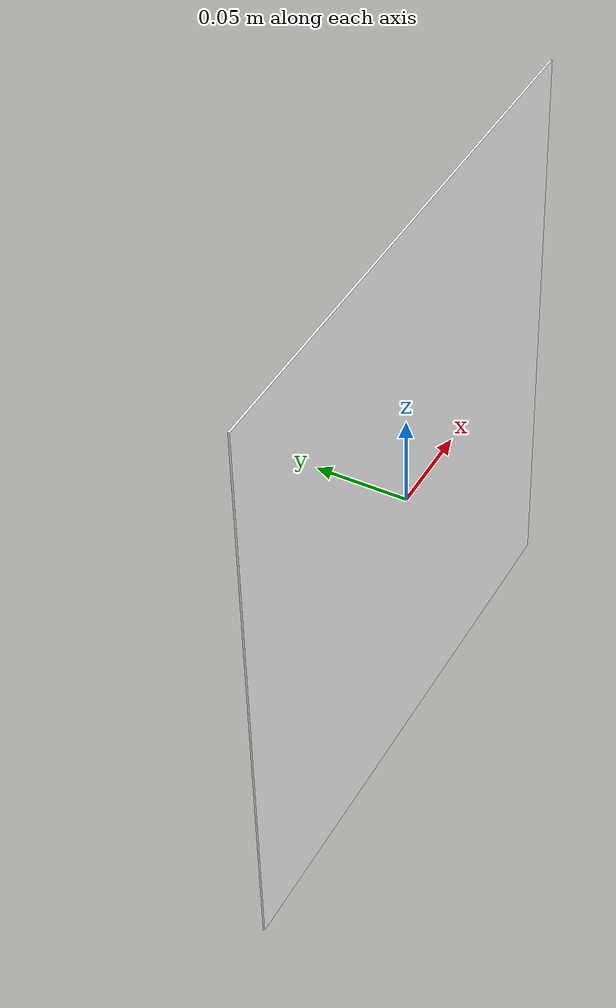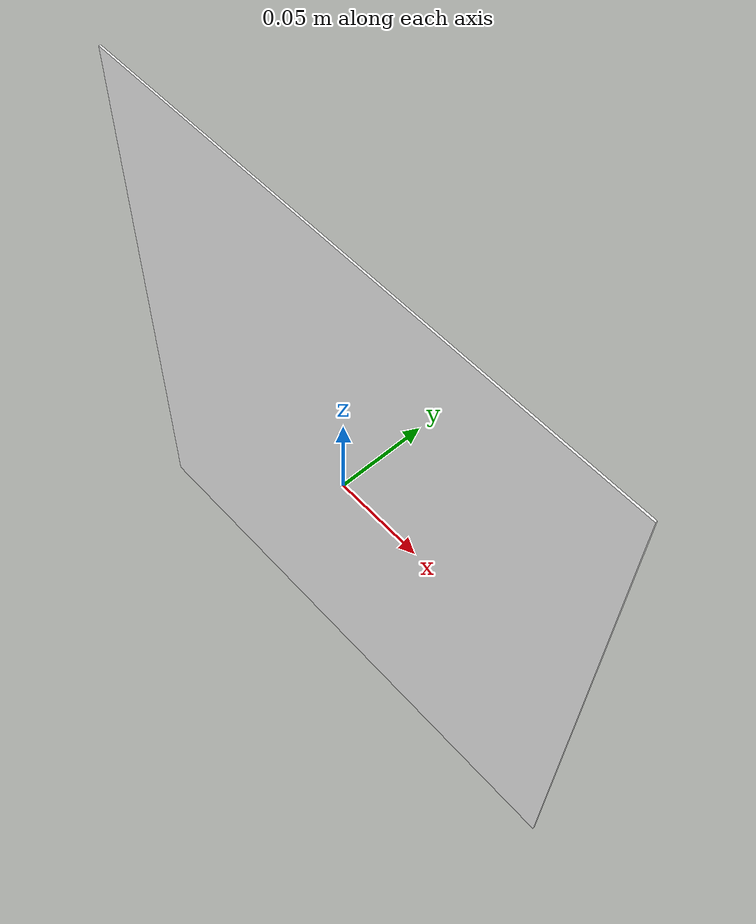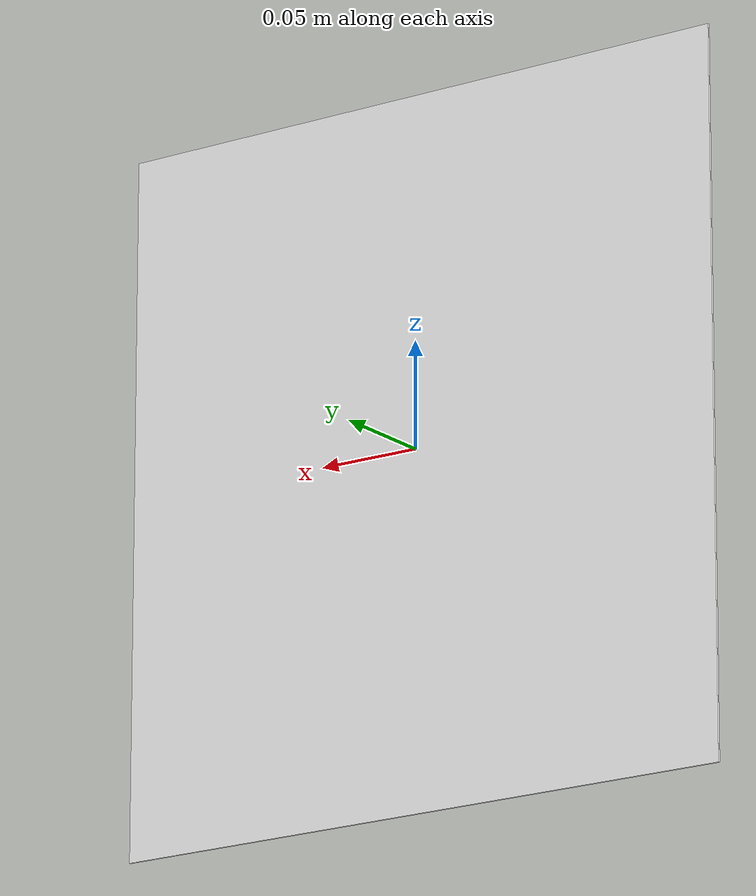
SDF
<?xml version="1.0" encoding="UTF-8"?>
<sdf version="1.10">
    <model name="GateRightImageLabel">
        <cast_shadows>false</cast_shadows>
        <link name="link">
            <visual name="right_side_label">
                <pose>0 0 0 0 0 0</pose>
                <geometry>
                    <box>
                        <size>0.31 0.001 0.33</size>
                    </box>
                </geometry>
                <cast_shadows>false</cast_shadows>

                <material>
                    <diffuse>1 1 1 1</diffuse>
                    <specular>0.1 0.1 0.1 1</specular>
                    <pbr>
                        <metal>
                            <albedo_map>model://Gate/meshes/SnRes.png</albedo_map>
                        </metal>
                    </pbr>
                </material>

                <plugin filename="gz-sim-label-system" name="gz::sim::systems::Label">
                    <label>1</label>
                </plugin>
            </visual>
        </link>
        <static>true</static>
    </model>
</sdf>
